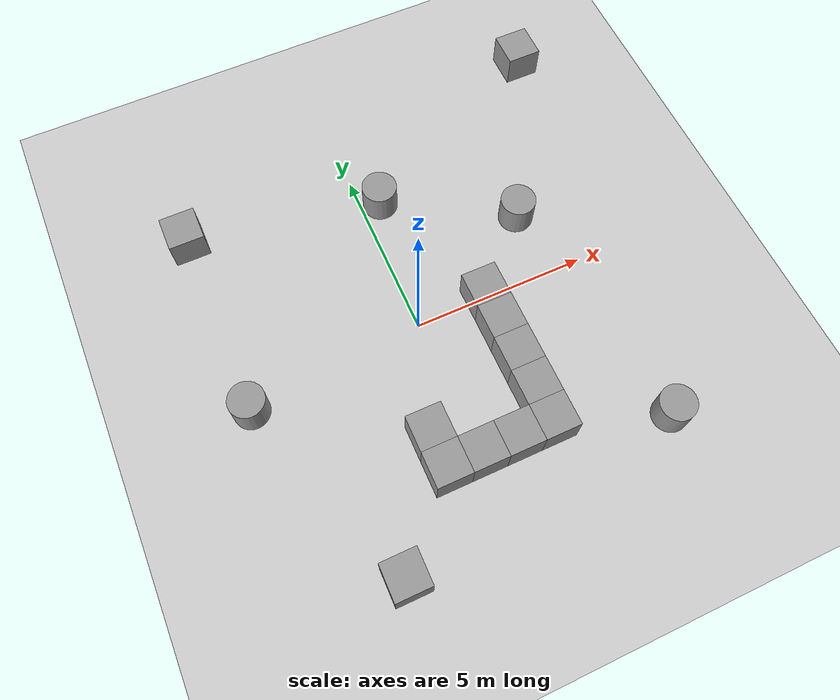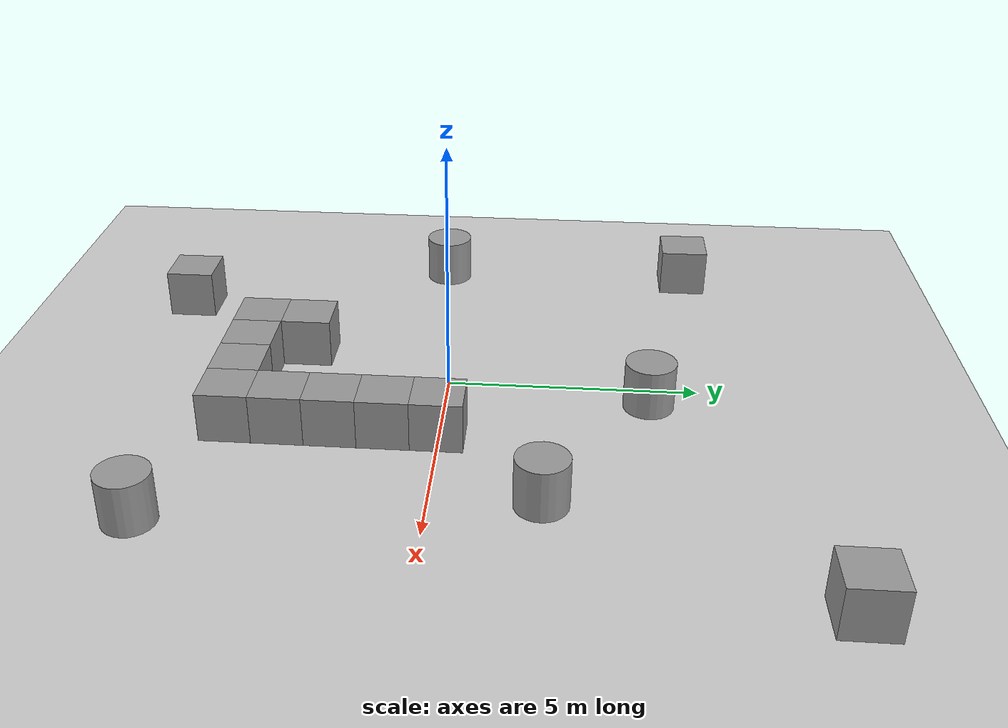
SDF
<sdf version="1.4">
 <world name="default">
  <light name="sun" type="directional">
   <pose>0 0 10 0 -0 0</pose>
   <diffuse>0.8 0.8 0.8 1</diffuse>
   <specular>0.2 0.2 0.2 1</specular>
   <attenuation>
    <range>1000</range>
    <constant>0.9</constant>
    <linear>0.01</linear>
    <quadratic>0.001</quadratic>
   </attenuation>
   <direction>-0.5 0.1 -0.9</direction>
  </light>
  <model name="ground_plane">
   <static>1</static>
   <link name="link">
    <collision name="collision">
     <geometry><plane><normal>0 0 1</normal><size>100 100</size></plane></geometry>
     <surface><friction><ode><mu>100</mu><mu2>50</mu2></ode></friction></surface>
    </collision>
    <visual name="visual">
     <cast_shadows>0</cast_shadows>
     <geometry><plane><normal>0 0 1</normal><size>100 100</size></plane></geometry>
     <material>
      <script><uri>file://media/materials/scripts/gazebo.material</uri><name>Gazebo/Grey</name></script>
     </material>
    </visual>
    <velocity_decay><linear>0</linear><angular>0</angular></velocity_decay>
   </link>
  </model>
  <physics type="ode">
   <max_step_size>0.001</max_step_size>
   <real_time_factor>1</real_time_factor>
   <real_time_update_rate>1000</real_time_update_rate>
   <gravity>0 0 -9.8</gravity>
  </physics>
  <scene><ambient>0.4 0.4 0.4 1</ambient><background>0.7 0.7 0.7 1</background><shadows>1</shadows></scene>
  <spherical_coordinates>
   <surface_model>EARTH_WGS84</surface_model>
   <latitude_deg>0</latitude_deg>
   <longitude_deg>0</longitude_deg>
   <elevation>0</elevation>
   <heading_deg>0</heading_deg>
  </spherical_coordinates>
  <model name="unit_cylinder_1">
   <pose>0.564176 4 0.499992 -1e-06 1e-06 0</pose>
   <link name="link">
    <inertial>
     <mass>1</mass>
     <inertia><ixx>1</ixx><ixy>0</ixy><ixz>0</ixz><iyy>1</iyy><iyz>0</iyz><izz>1</izz></inertia>
    </inertial>
    <collision name="collision">
     <geometry><cylinder><radius>0.5</radius><length>1</length></cylinder></geometry>
    </collision>
    <visual name="visual">
     <geometry><cylinder><radius>0.5</radius><length>1</length></cylinder></geometry>
     <material>
      <script><uri>file://media/materials/scripts/gazebo.material</uri><name>Gazebo/Grey</name></script>
     </material>
    </visual>
    <velocity_decay><linear>0</linear><angular>0</angular></velocity_decay>
   </link>
   <static>0</static>
  </model>
  <model name="unit_cylinder_2">
   <pose>4 2 0.499998 1e-06 -1e-06 0</pose>
   <link name="link">
    <inertial>
     <mass>1</mass>
     <inertia><ixx>1</ixx><ixy>0</ixy><ixz>0</ixz><iyy>1</iyy><iyz>0</iyz><izz>1</izz></inertia>
    </inertial>
    <collision name="collision">
     <geometry><cylinder><radius>0.5</radius><length>1</length></cylinder></geometry>
    </collision>
    <visual name="visual">
     <geometry><cylinder><radius>0.5</radius><length>1</length></cylinder></geometry>
     <material>
      <script><uri>file://media/materials/scripts/gazebo.material</uri><name>Gazebo/Grey</name></script>
     </material>
    </visual>
    <velocity_decay><linear>0</linear><angular>0</angular></velocity_decay>
   </link>
   <static>0</static>
  </model>
  <model name="unit_cylinder_3">
   <pose>-5 -0.448466 0.499992 -1e-06 1e-06 0</pose>
   <link name="link">
    <inertial>
     <mass>1</mass>
     <inertia><ixx>1</ixx><ixy>0</ixy><ixz>0</ixz><iyy>1</iyy><iyz>0</iyz><izz>1</izz></inertia>
    </inertial>
    <collision name="collision">
     <geometry><cylinder><radius>0.5</radius><length>1</length></cylinder></geometry>
    </collision>
    <visual name="visual">
     <geometry><cylinder><radius>0.5</radius><length>1</length></cylinder></geometry>
     <material>
      <script><uri>file://media/materials/scripts/gazebo.material</uri><name>Gazebo/Grey</name></script>
     </material>
    </visual>
    <velocity_decay><linear>0</linear><angular>0</angular></velocity_decay>
   </link>
   <static>0</static>
  </model>
  <model name="unit_cylinder_4">
   <pose>5 -5 0.499998 1e-06 -1e-06 0</pose>
   <link name="link">
    <inertial>
     <mass>1</mass>
     <inertia><ixx>1</ixx><ixy>0</ixy><ixz>0</ixz><iyy>1</iyy><iyz>0</iyz><izz>1</izz></inertia>
    </inertial>
    <collision name="collision">
     <geometry><cylinder><radius>0.5</radius><length>1</length></cylinder></geometry>
    </collision>
    <visual name="visual">
     <geometry><cylinder><radius>0.5</radius><length>1</length></cylinder></geometry>
     <material>
      <script><uri>file://media/materials/scripts/gazebo.material</uri><name>Gazebo/Grey</name></script>
     </material>
    </visual>
    <velocity_decay><linear>0</linear><angular>0</angular></velocity_decay>
   </link>
   <static>0</static>
  </model>
  <model name="unit_box_1">
   <pose>-3 -6 0.5 0 -0 0</pose>
   <link name="link">
    <inertial>
     <mass>1</mass>
     <inertia><ixx>1</ixx><ixy>0</ixy><ixz>0</ixz><iyy>1</iyy><iyz>0</iyz><izz>1</izz></inertia>
    </inertial>
    <collision name="collision"><geometry><box><size>1 1 1</size></box></geometry></collision>
    <visual name="visual">
     <geometry><box><size>1 1 1</size></box></geometry>
     <material>
      <script><uri>file://media/materials/scripts/gazebo.material</uri><name>Gazebo/Grey</name></script>
     </material>
    </visual>
    <velocity_decay><linear>0</linear><angular>0</angular></velocity_decay>
   </link>
   <static>0</static>
  </model>
  <model name="unit_box_2">
   <pose>1 -4 0.5 0 -0 0</pose>
   <link name="link">
    <inertial>
     <mass>1</mass>
     <inertia><ixx>1</ixx><ixy>0</ixy><ixz>0</ixz><iyy>1</iyy><iyz>0</iyz><izz>1</izz></inertia>
    </inertial>
    <collision name="collision"><geometry><box><size>1 1 1</size></box></geometry></collision>
    <visual name="visual">
     <geometry><box><size>1 1 1</size></box></geometry>
     <material>
      <script><uri>file://media/materials/scripts/gazebo.material</uri><name>Gazebo/Grey</name></script>
     </material>
    </visual>
    <velocity_decay><linear>0</linear><angular>0</angular></velocity_decay>
   </link>
   <static>0</static>
  </model>
  <model name="unit_box_3">
   <pose>-5 5 0.5 0 -0 0</pose>
   <link name="link">
    <inertial>
     <mass>1</mass>
     <inertia><ixx>1</ixx><ixy>0</ixy><ixz>0</ixz><iyy>1</iyy><iyz>0</iyz><izz>1</izz></inertia>
    </inertial>
    <collision name="collision"><geometry><box><size>1 1 1</size></box></geometry></collision>
    <visual name="visual">
     <geometry><box><size>1 1 1</size></box></geometry>
     <material>
      <script><uri>file://media/materials/scripts/gazebo.material</uri><name>Gazebo/Grey</name></script>
     </material>
    </visual>
    <velocity_decay><linear>0</linear><angular>0</angular></velocity_decay>
   </link>
   <static>0</static>
  </model>
  <model name="unit_box_4">
   <pose>6.49671 7 0.5 0 -0 0</pose>
   <link name="link">
    <inertial>
     <mass>1</mass>
     <inertia><ixx>1</ixx><ixy>0</ixy><ixz>0</ixz><iyy>1</iyy><iyz>0</iyz><izz>1</izz></inertia>
    </inertial>
    <collision name="collision"><geometry><box><size>1 1 1</size></box></geometry></collision>
    <visual name="visual">
     <geometry><box><size>1 1 1</size></box></geometry>
     <material>
      <script><uri>file://media/materials/scripts/gazebo.material</uri><name>Gazebo/Grey</name></script>
     </material>
    </visual>
    <velocity_decay><linear>0</linear><angular>0</angular></velocity_decay>
   </link>
   <static>0</static>
  </model>
  <model name="unit_box_1_0">
   <pose>0 -4 0.5 0 -0 0</pose>
   <link name="link">
    <inertial>
     <mass>1</mass>
     <inertia><ixx>1</ixx><ixy>0</ixy><ixz>0</ixz><iyy>1</iyy><iyz>0</iyz><izz>1</izz></inertia>
    </inertial>
    <collision name="collision"><geometry><box><size>1 1 1</size></box></geometry></collision>
    <visual name="visual">
     <geometry><box><size>1 1 1</size></box></geometry>
     <material>
      <script><uri>file://media/materials/scripts/gazebo.material</uri><name>Gazebo/Grey</name></script>
     </material>
    </visual>
    <velocity_decay><linear>0</linear><angular>0</angular></velocity_decay>
   </link>
   <static>0</static>
  </model>
  <model name="unit_box_2_0">
   <pose>-1 -4 0.5 0 -0 0</pose>
   <link name="link">
    <inertial>
     <mass>1</mass>
     <inertia><ixx>1</ixx><ixy>0</ixy><ixz>0</ixz><iyy>1</iyy><iyz>0</iyz><izz>1</izz></inertia>
    </inertial>
    <collision name="collision"><geometry><box><size>1 1 1</size></box></geometry></collision>
    <visual name="visual">
     <geometry><box><size>1 1 1</size></box></geometry>
     <material>
      <script><uri>file://media/materials/scripts/gazebo.material</uri><name>Gazebo/Grey</name></script>
     </material>
    </visual>
    <velocity_decay><linear>0</linear><angular>0</angular></velocity_decay>
   </link>
   <static>0</static>
  </model>
  <model name="unit_box_3_0">
   <pose>2 -4 0.5 0 -0 0</pose>
   <link name="link">
    <inertial>
     <mass>1</mass>
     <inertia><ixx>1</ixx><ixy>0</ixy><ixz>0</ixz><iyy>1</iyy><iyz>0</iyz><izz>1</izz></inertia>
    </inertial>
    <collision name="collision"><geometry><box><size>1 1 1</size></box></geometry></collision>
    <visual name="visual">
     <geometry><box><size>1 1 1</size></box></geometry>
     <material>
      <script><uri>file://media/materials/scripts/gazebo.material</uri><name>Gazebo/Grey</name></script>
     </material>
    </visual>
    <velocity_decay><linear>0</linear><angular>0</angular></velocity_decay>
   </link>
   <static>0</static>
  </model>
  <model name="unit_box_4_0">
   <pose>2 -3 0.5 0 -0 0</pose>
   <link name="link">
    <inertial>
     <mass>1</mass>
     <inertia><ixx>1</ixx><ixy>0</ixy><ixz>0</ixz><iyy>1</iyy><iyz>0</iyz><izz>1</izz></inertia>
    </inertial>
    <collision name="collision"><geometry><box><size>1 1 1</size></box></geometry></collision>
    <visual name="visual">
     <geometry><box><size>1 1 1</size></box></geometry>
     <material>
      <script><uri>file://media/materials/scripts/gazebo.material</uri><name>Gazebo/Grey</name></script>
     </material>
    </visual>
    <velocity_decay><linear>0</linear><angular>0</angular></velocity_decay>
   </link>
   <static>0</static>
  </model>
  <model name="unit_box_5">
   <pose>2 -2 0.5 0 -0 0</pose>
   <link name="link">
    <inertial>
     <mass>1</mass>
     <inertia><ixx>1</ixx><ixy>0</ixy><ixz>0</ixz><iyy>1</iyy><iyz>0</iyz><izz>1</izz></inertia>
    </inertial>
    <collision name="collision"><geometry><box><size>1 1 1</size></box></geometry></collision>
    <visual name="visual">
     <geometry><box><size>1 1 1</size></box></geometry>
     <material>
      <script><uri>file://media/materials/scripts/gazebo.material</uri><name>Gazebo/Grey</name></script>
     </material>
    </visual>
    <velocity_decay><linear>0</linear><angular>0</angular></velocity_decay>
   </link>
   <static>0</static>
  </model>
  <model name="unit_box_6">
   <pose>2 -1 0.5 0 -0 0</pose>
   <link name="link">
    <inertial>
     <mass>1</mass>
     <inertia><ixx>1</ixx><ixy>0</ixy><ixz>0</ixz><iyy>1</iyy><iyz>0</iyz><izz>1</izz></inertia>
    </inertial>
    <collision name="collision"><geometry><box><size>1 1 1</size></box></geometry></collision>
    <visual name="visual">
     <geometry><box><size>1 1 1</size></box></geometry>
     <material>
      <script><uri>file://media/materials/scripts/gazebo.material</uri><name>Gazebo/Grey</name></script>
     </material>
    </visual>
    <velocity_decay><linear>0</linear><angular>0</angular></velocity_decay>
   </link>
   <static>0</static>
  </model>
  <model name="unit_box_7">
   <pose>2 -0 0.5 0 -0 0</pose>
   <link name="link">
    <inertial>
     <mass>1</mass>
     <inertia><ixx>1</ixx><ixy>0</ixy><ixz>0</ixz><iyy>1</iyy><iyz>0</iyz><izz>1</izz></inertia>
    </inertial>
    <collision name="collision"><geometry><box><size>1 1 1</size></box></geometry></collision>
    <visual name="visual">
     <geometry><box><size>1 1 1</size></box></geometry>
     <material>
      <script><uri>file://media/materials/scripts/gazebo.material</uri><name>Gazebo/Grey</name></script>
     </material>
    </visual>
    <velocity_decay><linear>0</linear><angular>0</angular></velocity_decay>
   </link>
   <static>0</static>
  </model>
  <model name="unit_box_8">
   <pose>-1 -3 0.5 0 -0 0</pose>
   <link name="link">
    <inertial>
     <mass>1</mass>
     <inertia><ixx>1</ixx><ixy>0</ixy><ixz>0</ixz><iyy>1</iyy><iyz>0</iyz><izz>1</izz></inertia>
    </inertial>
    <collision name="collision"><geometry><box><size>1 1 1</size></box></geometry></collision>
    <visual name="visual">
     <geometry><box><size>1 1 1</size></box></geometry>
     <material>
      <script><uri>file://media/materials/scripts/gazebo.material</uri><name>Gazebo/Grey</name></script>
     </material>
    </visual>
    <velocity_decay><linear>0</linear><angular>0</angular></velocity_decay>
   </link>
   <static>0</static>
  </model>
 </world>
</sdf>
